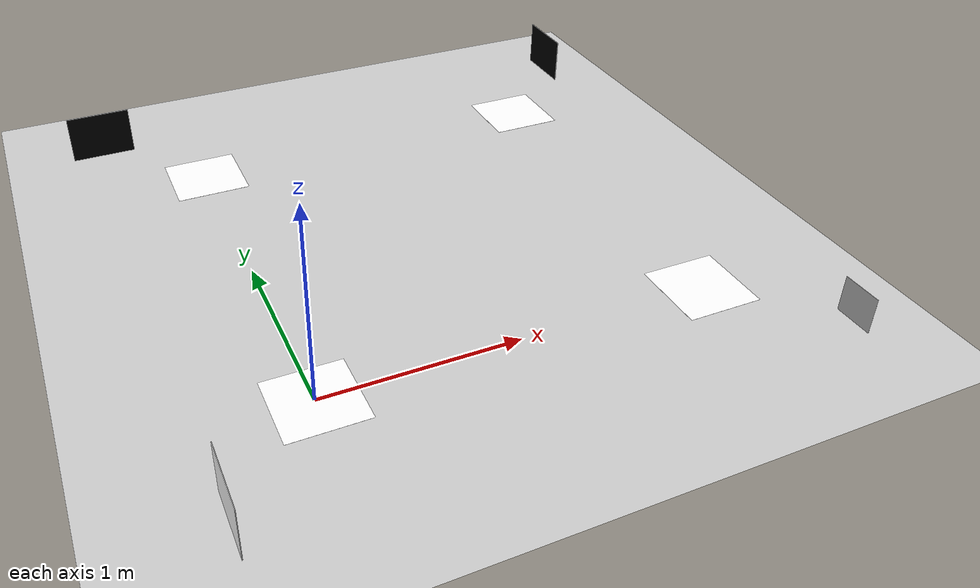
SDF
<sdf version="1.4">
  <world name="default">

    <scene>
      <ambient>0 0 0 1</ambient>
      <background>0.7 0.7 0.7 1</background>
      <shadows>0</shadows>
    </scene>

    <!-- Arena lights -->
    <include>
      <uri>model://simple_light</uri>
    </include>

      <light name='point_light_0' type='point'>
        <pose frame=''>1 -1 1 0 0 0</pose>
        <diffuse>0.5 0.5 0.5 1</diffuse>
        <specular>0.3 0.3 0.3 1</specular>
        <attenuation>
          <range>20</range>
          <constant>0.5</constant>
          <linear>0.01</linear>
          <quadratic>0.001</quadratic>
        </attenuation>
        <cast_shadows>0</cast_shadows>
        <direction>-0.3 0.3 -1</direction>
    </light>

    <light name='point_light_1' type='point'>
      <pose frame=''>-1 1 1 0 0 0</pose>
      <diffuse>0.5 0.5 0.5 1</diffuse>
      <specular>0.3 0.3 0.3 1</specular>
      <attenuation>
        <range>20</range>
        <constant>0.5</constant>
        <linear>0.01</linear>
        <quadratic>0.001</quadratic>
      </attenuation>
      <cast_shadows>0</cast_shadows>
      <direction>0.3 -0.3 -1</direction>
    </light>

    <!-- An empty plane -->

        <!-- Puzzlebot wood plane -->
    <include>
      <uri>model://puzzlebot_base</uri>
    </include>

    <include>
      <name>marker_0</name>
      <uri>model://aruco_marker_0</uri>
      <pose>2.5 -0.5 0.091 0 0 3.141592654</pose>
    </include>

    <include>
      <name>marker_1</name>
      <uri>model://aruco_marker_1</uri>
      <pose>2.5 2.5 0.091 0 0 4.7123</pose>
    </include>

    <include>
      <name>marker_2</name>
      <uri>model://aruco_marker_2</uri>
      <pose>-0.5 2.5 0.091 0 0 0</pose>
    </include>

    <include>
      <name>marker_3</name>
      <uri>model://aruco_marker_3</uri>
      <pose>-0.5 -0.5 0.091 0 0 1.5708</pose>
    </include>

    <include>
      <name>goal_1</name>
      <uri>model://goal_marker_5</uri>
      <pose>0 0 0.001 0 0 0</pose>
    </include>

    <include>
      <name>goal_2</name>
      <uri>model://goal_marker_5</uri>
      <pose>2 0 0.001 0 0 0</pose>
    </include>

    <include>
      <name>goal_3</name>
      <uri>model://goal_marker_5</uri>
      <pose>2 2 0.001 0 0 0</pose>
    </include>

    <include>
      <name>goal_4</name>
      <uri>model://goal_marker_5</uri>
      <pose>0 2 0.001 0 0 0</pose>
    </include>

    <physics type="ode">
      <real_time_update_rate>1000.0</real_time_update_rate>
      <max_step_size>0.001</max_step_size>
      <real_time_factor>1</real_time_factor>
      <ode>
        <solver>
          <type>quick</type>
          <iters>150</iters>
          <precon_iters>0</precon_iters>
          <sor>1.400000</sor>
          <use_dynamic_moi_rescaling>1</use_dynamic_moi_rescaling>
        </solver>
        <constraints>
          <cfm>0.00001</cfm>
          <erp>0.2</erp>
          <contact_max_correcting_vel>2000.000000</contact_max_correcting_vel>
          <contact_surface_layer>0.01000</contact_surface_layer>
        </constraints>
      </ode>
    </physics>

    <gui fullscreen='0'>
      <camera name='user_camera'>
        <pose>-8.0 -8.0 10.0 0 0.785 0.785</pose>
        <view_controller>orbit</view_controller>
      </camera>
    </gui>

  </world>
</sdf>

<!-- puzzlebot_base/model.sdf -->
<sdf version="1.9">
    <model name="puzzlebot_base">
        <static>true</static>
        <link name="link">
            <collision name="collision">
                <geometry>
                    <plane>
                        <normal>0 0 1</normal>
                        <size>10.0 10.0</size>
                    </plane>
                </geometry>
                <surface>
                    <contact>
                        <collide_bitmask>0xffff</collide_bitmask>
                    </contact>
                    <friction>
                        <ode>
                            <mu>100</mu>
                            <mu2>50</mu2>
                        </ode>
                    </friction>
                </surface>
            </collision>

            <visual name="puzzlebot_visual">
                <pose>0 0 0.001 0 0 0</pose>
                <cast_shadows>false</cast_shadows>
                <geometry>
                    <plane>
                        <normal>0 0 1</normal>
                        <size>8.0 8.0</size>
                    </plane>
                </geometry>

                <material>
                    <ambient>0.8 0.8 0.8 1</ambient>
                    <diffuse>0.8 0.8 0.8 1</diffuse>
                    <specular>1 0.8 0.8 1</specular>
                    <pbr>
                        <metal>
                        <albedo_map>model://puzzlebot_base/materials/textures/puzzlebot_wood_6.png</albedo_map>
                        <normal_map>model://puzzlebot_base/materials/textures/puzzlebot_wood_6.png</normal_map>
                        </metal>
                    </pbr>
                </material>
            </visual>
        </link>
    </model>
</sdf>

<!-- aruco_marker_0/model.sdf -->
<sdf version='1.6'>
  <model name='aruco_marker_0'>
    <link name='link_0'>
      <pose frame=''>0 0 0 0 -0 0</pose>
      <inertial>
        <mass>1</mass>
        <inertia>
          <ixx>0</ixx>
          <ixy>0</ixy>
          <ixz>0</ixz>
          <iyy>0</iyy>
          <iyz>0</iyz>
          <izz>0</izz>
        </inertia>
      </inertial>
      <visual name='visual'>
        <pose frame=''>0 0 0 0 -0 0</pose>
        <geometry>
          <mesh>
            <uri>file://isr-testbed/aruco_marker_0/aruco_marker_0.dae</uri>
            <scale>0.1 0.1 0.1</scale>
          </mesh>
        </geometry>
        <material>
          <lighting>1</lighting>
          <script>
            <uri>file://media/materials/scripts/gazebo.material</uri>
            <name>Gazebo/DepthMapVS</name>
          </script>
          <ambient>0.3 0.3 0.3 1</ambient>
          <diffuse>0.7 0.7 0.7 1</diffuse>
          <specular>0.01 0.01 0.01 1</specular>
          <emissive>0 0 0 1</emissive>
        </material>
        <transparency>0</transparency>
        <cast_shadows>1</cast_shadows>
      </visual>
      <collision name='collision'>
        <laser_retro>0</laser_retro>
        <max_contacts>10</max_contacts>
        <pose frame=''>0 0 0 0 -0 0</pose>
        <geometry>
          <mesh>
            <uri>file://isr-testbed/aruco_marker_0/aruco_marker_0.dae</uri>
            <scale>0.1 0.1 0.1</scale>
          </mesh>
        </geometry>
        <surface>
          <friction>
            <ode>
              <mu>1</mu>
              <mu2>1</mu2>
              <fdir1>0 0 0</fdir1>
              <slip1>0</slip1>
              <slip2>0</slip2>
            </ode>
            <torsional>
              <coefficient>1</coefficient>
              <patch_radius>0</patch_radius>
              <surface_radius>0</surface_radius>
              <use_patch_radius>1</use_patch_radius>
              <ode>
                <slip>0</slip>
              </ode>
            </torsional>
          </friction>
          <bounce>
            <restitution_coefficient>0</restitution_coefficient>
            <threshold>1e+06</threshold>
          </bounce>
          <contact>
            <collide_without_contact>0</collide_without_contact>
            <collide_without_contact_bitmask>1</collide_without_contact_bitmask>
            <collide_bitmask>1</collide_bitmask>
            <ode>
              <soft_cfm>0</soft_cfm>
              <soft_erp>0.2</soft_erp>
              <kp>1e+13</kp>
              <kd>1</kd>
              <max_vel>0.01</max_vel>
              <min_depth>0</min_depth>
            </ode>
            <bullet>
              <split_impulse>1</split_impulse>
              <split_impulse_penetration_threshold>-0.01</split_impulse_penetration_threshold>
              <soft_cfm>0</soft_cfm>
              <soft_erp>0.2</soft_erp>
              <kp>1e+13</kp>
              <kd>1</kd>
            </bullet>
          </contact>
        </surface>
      </collision>
    </link>
    <static>1</static>
    <allow_auto_disable>1</allow_auto_disable>
  </model>
</sdf>

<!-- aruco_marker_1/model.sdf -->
<sdf version="1.9">
  <model name="aruco_marker_1">
    <static>true</static>

    <link name="link">
      <visual name="front">
        <pose>0 0 0 0 0 0</pose>
        <geometry>
          <box>
            <size>0.35 0.002 0.35</size>
          </box>
        </geometry>

        <material>
          <ambient>1 1 1 1</ambient>
          <diffuse>1 1 1 1</diffuse>
          <specular>0.1 0.1 0.1 1</specular>
          <emissive>0 0 0 1</emissive>

          <pbr>
            <metal>
              <albedo_map>
                model://aruco/aruco_marker_1/materials/textures/marker_1.png
              </albedo_map>
              <emissive_map>
                model://aruco/aruco_marker_1/materials/textures/marker_1.png
              </emissive_map>
            </metal>
          </pbr>
        </material>
      </visual>

      <visual name="back">
        <pose>0 -0.002 0 0 0 3.1416</pose>
        <geometry>
          <box>
            <size>0.35 0.002 0.35</size>
          </box>
        </geometry>
        <material>
          <ambient>0 0 0 1</ambient>
          <diffuse>0 0 0 1</diffuse>
        </material>
      </visual>

    </link>

  </model>
</sdf>

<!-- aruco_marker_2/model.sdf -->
<sdf version="1.9">
  <model name="aruco_marker_2">
    <static>true</static>

    <link name="link">
      <visual name="front">
        <pose>0 0 0 0 0 0</pose>
        <geometry>
          <box>
            <size>0.35 0.002 0.35</size>
          </box>
        </geometry>

        <material>
          <ambient>1 1 1 1</ambient>
          <diffuse>1 1 1 1</diffuse>
          <specular>0.1 0.1 0.1 1</specular>
          <emissive>0 0 0 1</emissive>

          <pbr>
            <metal>
              <albedo_map>
                model://aruco/aruco_marker_2/materials/textures/marker_2.png
              </albedo_map>
              <emissive_map>
                model://aruco/aruco_marker_2/materials/textures/marker_2.png
              </emissive_map>
            </metal>
          </pbr>
        </material>
      </visual>

      <visual name="back">
        <pose>0 -0.002 0 0 0 3.1416</pose>
        <geometry>
          <box>
            <size>0.35 0.002 0.35</size>
          </box>
        </geometry>
        <material>
          <ambient>0 0 0 1</ambient>
          <diffuse>0 0 0 1</diffuse>
        </material>
      </visual>

    </link>

  </model>
</sdf>

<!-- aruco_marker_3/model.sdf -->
<sdf version="1.9">
  <model name="aruco_marker_3">
    <static>true</static>

    <link name="link">
      <visual name="front">
        <pose>0 0 0 0 0 0</pose>
        <geometry>
          <box>
            <size>0.35 0.002 0.35</size>
          </box>
        </geometry>

        <material>
          <ambient>1 1 1 1</ambient>
          <diffuse>1 1 1 1</diffuse>
          <specular>0.1 0.1 0.1 1</specular>
          <emissive>0 0 0 1</emissive>

          <pbr>
            <metal>
              <albedo_map>
                model://aruco/aruco_marker_3/materials/textures/marker_3.png
              </albedo_map>
              <emissive_map>
                model://aruco/aruco_marker_3/materials/textures/marker_3.png
              </emissive_map>
            </metal>
          </pbr>
        </material>
      </visual>

      <visual name="back">
        <pose>0 -0.002 0 0 0 3.1416</pose>
        <geometry>
          <box>
            <size>0.35 0.002 0.35</size>
          </box>
        </geometry>
        <material>
          <ambient>0 0 0 1</ambient>
          <diffuse>0 0 0 1</diffuse>
        </material>
      </visual>

    </link>

  </model>
</sdf>

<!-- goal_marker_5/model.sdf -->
<sdf version="1.5">
        <model name="goal_marker_5">
            <static>true</static>
                <link name="link">
                    <pose>0 0 0 0 0 0</pose>
                    <visual name="visual">
                        <cast_shadows>false</cast_shadows>
                        <geometry>
                            <plane>
                                    <normal>0 0 1</normal>
                                    <size>0.4 0.4</size>
                            </plane>
                        </geometry>
                        <material>
                            <ambient>1 1 1 1</ambient>
                            <diffuse>1 1 1 1</diffuse>
                            <specular>1 1 1 1</specular>
                            <pbr>
                                <metal>
                                <albedo_map>model://goal_marker_5/materials/textures/mcr2_goal_5.png</albedo_map>
                                <normal_map>model://goal_marker_5/materials/textures/mcr2_goal_5.png</normal_map>
                                </metal>
                            </pbr>
                        </material>
                    </visual>
                </link>
        </model>
    </sdf>
